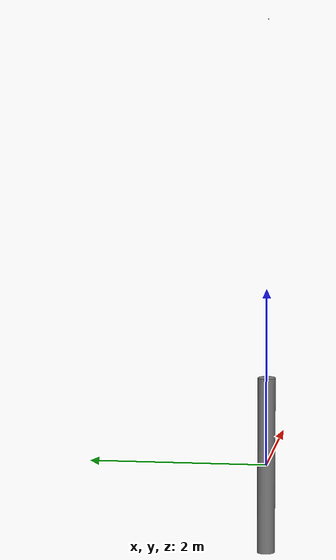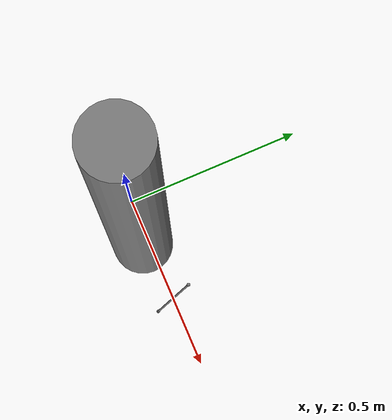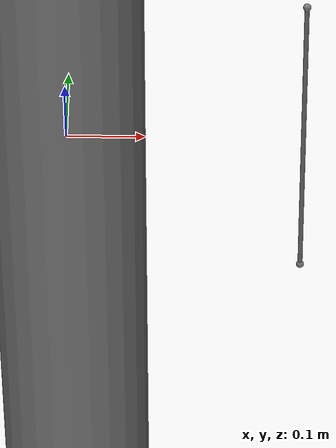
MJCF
<mujoco>
  <worldbody>
    <body name="b0">
      <geom name="wrap_cyl_3d" type="cylinder" size="0.1 1.0"/>
      <site name="s1" pos="0.3 0.05 0.2"/>
      <site name="side_3d" pos="0.05 0 5.0"/>
      <body name="b1">
        <joint name="j1" type="hinge" axis="0 0 1"/>
        <geom type="sphere" size="0.01" mass="0.1"/>
        <site name="s2" pos="0.3 -0.05 -0.2"/>
      </body>
    </body>
  </worldbody>
  <tendon>
    <spatial name="t_3d_dispatch">
      <site site="s1"/>
      <geom geom="wrap_cyl_3d" sidesite="side_3d"/>
      <site site="s2"/>
    </spatial>
  </tendon>
</mujoco>
